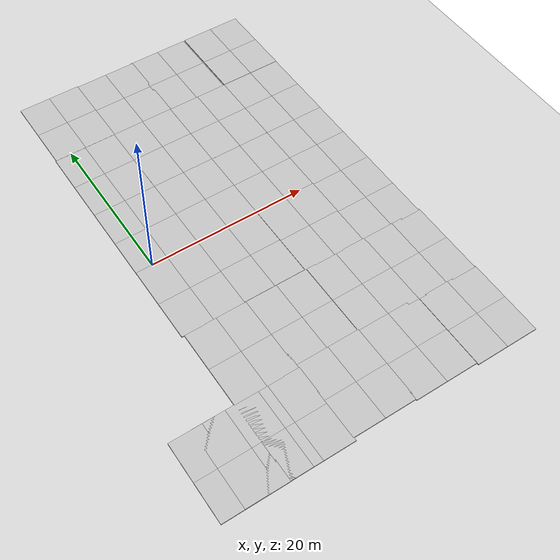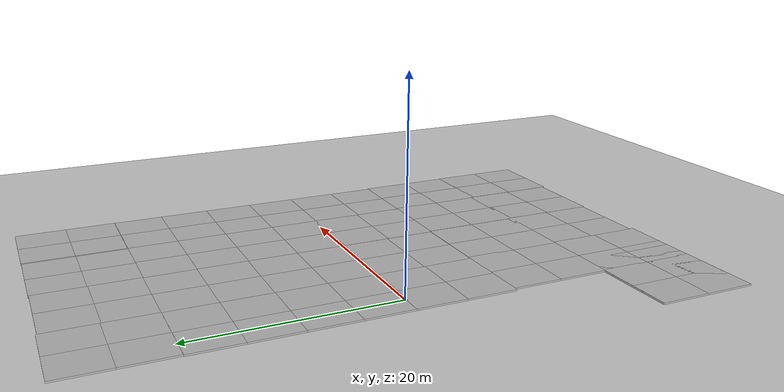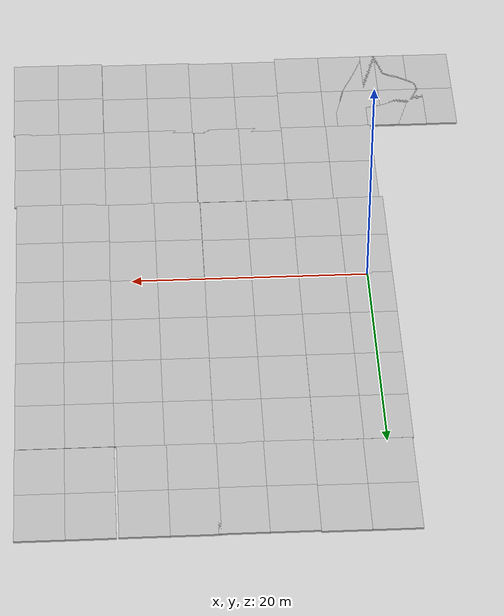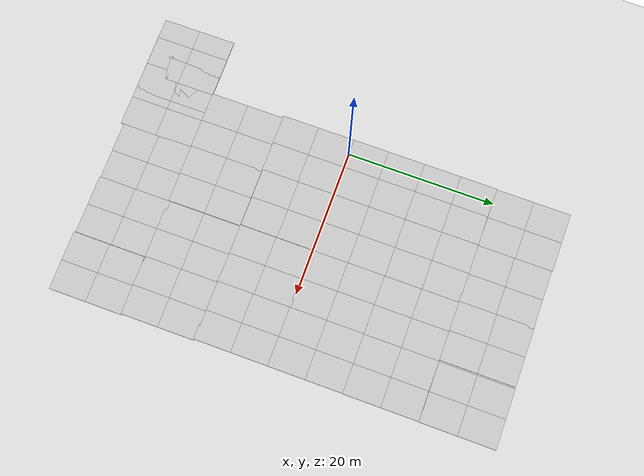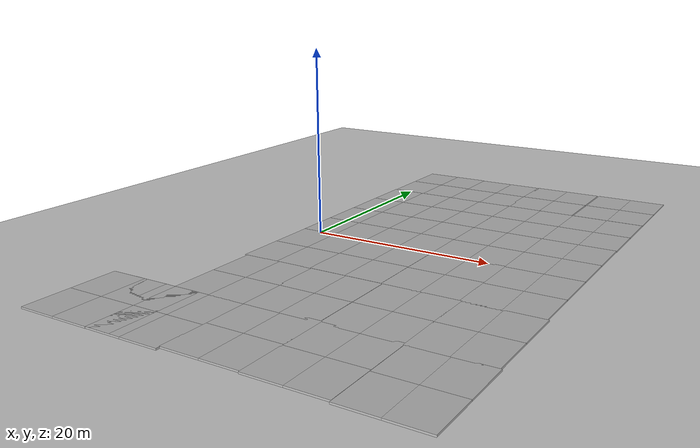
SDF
<sdf version="1.6">
 <world name="default">
  <model name="ground_plane">
   <static>1</static>
   <link name="link">
    <collision name="collision">
     <geometry><plane><normal>0 0 1</normal><size>100 100</size></plane></geometry>
     <surface><friction><ode><mu>100</mu><mu2>50</mu2></ode></friction></surface>
    </collision>
    <visual name="visual">
     <cast_shadows>0</cast_shadows>
     <geometry><plane><normal>0 0 1</normal><size>100 100</size></plane></geometry>
     <material>
      <script><uri>file://media/materials/scripts/gazebo.material</uri><name>Gazebo/Grey</name></script>
     </material>
    </visual>
   </link>
  </model>
  <model name="mud_box">
   <static>1</static>
   <link name="link">
    <collision name="collision"><geometry><box><size>8 10 0.2</size></box></geometry></collision>
    <visual name="visual_1">
     <pose>-2 2.5 0 0 -0 0</pose>
     <cast_shadows>0</cast_shadows>
     <geometry><box><size>4 5 0.2</size></box></geometry>
     <material>
      <script>
       <uri>model://mud_box/materials/scripts</uri>
       <uri>model://mud_box/materials/textures</uri>
       <name>vrc/mud</name>
      </script>
     </material>
    </visual>
    <visual name="visual_2">
     <pose>2 2.5 0 0 -0 0</pose>
     <cast_shadows>0</cast_shadows>
     <geometry><box><size>4 5 0.2</size></box></geometry>
     <material>
      <script>
       <uri>model://mud_box/materials/scripts</uri>
       <uri>model://mud_box/materials/textures</uri>
       <name>vrc/mud</name>
      </script>
     </material>
    </visual>
    <visual name="visual_3">
     <pose>2 -2.5 0 0 -0 0</pose>
     <cast_shadows>0</cast_shadows>
     <geometry><box><size>4 5 0.2</size></box></geometry>
     <material>
      <script>
       <uri>model://mud_box/materials/scripts</uri>
       <uri>model://mud_box/materials/textures</uri>
       <name>vrc/mud</name>
      </script>
     </material>
    </visual>
    <visual name="visual_4">
     <pose>-2 -2.5 0 0 -0 0</pose>
     <cast_shadows>0</cast_shadows>
     <geometry><box><size>4 5 0.2</size></box></geometry>
     <material>
      <script>
       <uri>model://mud_box/materials/scripts</uri>
       <uri>model://mud_box/materials/textures</uri>
       <name>vrc/mud</name>
      </script>
     </material>
    </visual>
   </link>
   <pose>9.86832 14.8407 0 0 -0 0</pose>
  </model>
  <model name="mud_box_0">
   <static>1</static>
   <link name="link">
    <collision name="collision"><geometry><box><size>8 10 0.2</size></box></geometry></collision>
    <visual name="visual_1">
     <pose>-2 2.5 0 0 -0 0</pose>
     <cast_shadows>0</cast_shadows>
     <geometry><box><size>4 5 0.2</size></box></geometry>
     <material>
      <script>
       <uri>model://mud_box/materials/scripts</uri>
       <uri>model://mud_box/materials/textures</uri>
       <name>vrc/mud</name>
      </script>
     </material>
    </visual>
    <visual name="visual_2">
     <pose>2 2.5 0 0 -0 0</pose>
     <cast_shadows>0</cast_shadows>
     <geometry><box><size>4 5 0.2</size></box></geometry>
     <material>
      <script>
       <uri>model://mud_box/materials/scripts</uri>
       <uri>model://mud_box/materials/textures</uri>
       <name>vrc/mud</name>
      </script>
     </material>
    </visual>
    <visual name="visual_3">
     <pose>2 -2.5 0 0 -0 0</pose>
     <cast_shadows>0</cast_shadows>
     <geometry><box><size>4 5 0.2</size></box></geometry>
     <material>
      <script>
       <uri>model://mud_box/materials/scripts</uri>
       <uri>model://mud_box/materials/textures</uri>
       <name>vrc/mud</name>
      </script>
     </material>
    </visual>
    <visual name="visual_4">
     <pose>-2 -2.5 0 0 -0 0</pose>
     <cast_shadows>0</cast_shadows>
     <geometry><box><size>4 5 0.2</size></box></geometry>
     <material>
      <script>
       <uri>model://mud_box/materials/scripts</uri>
       <uri>model://mud_box/materials/textures</uri>
       <name>vrc/mud</name>
      </script>
     </material>
    </visual>
   </link>
   <pose>1.86767 4.83104 0 0 -0 0</pose>
  </model>
  <model name="mud_box_1">
   <static>1</static>
   <link name="link">
    <collision name="collision"><geometry><box><size>8 10 0.2</size></box></geometry></collision>
    <visual name="visual_1">
     <pose>-2 2.5 0 0 -0 0</pose>
     <cast_shadows>0</cast_shadows>
     <geometry><box><size>4 5 0.2</size></box></geometry>
     <material>
      <script>
       <uri>model://mud_box/materials/scripts</uri>
       <uri>model://mud_box/materials/textures</uri>
       <name>vrc/mud</name>
      </script>
     </material>
    </visual>
    <visual name="visual_2">
     <pose>2 2.5 0 0 -0 0</pose>
     <cast_shadows>0</cast_shadows>
     <geometry><box><size>4 5 0.2</size></box></geometry>
     <material>
      <script>
       <uri>model://mud_box/materials/scripts</uri>
       <uri>model://mud_box/materials/textures</uri>
       <name>vrc/mud</name>
      </script>
     </material>
    </visual>
    <visual name="visual_3">
     <pose>2 -2.5 0 0 -0 0</pose>
     <cast_shadows>0</cast_shadows>
     <geometry><box><size>4 5 0.2</size></box></geometry>
     <material>
      <script>
       <uri>model://mud_box/materials/scripts</uri>
       <uri>model://mud_box/materials/textures</uri>
       <name>vrc/mud</name>
      </script>
     </material>
    </visual>
    <visual name="visual_4">
     <pose>-2 -2.5 0 0 -0 0</pose>
     <cast_shadows>0</cast_shadows>
     <geometry><box><size>4 5 0.2</size></box></geometry>
     <material>
      <script>
       <uri>model://mud_box/materials/scripts</uri>
       <uri>model://mud_box/materials/textures</uri>
       <name>vrc/mud</name>
      </script>
     </material>
    </visual>
   </link>
   <pose>25.8304 -5.18145 0 0 -0 0</pose>
  </model>
  <model name="mud_box_2">
   <static>1</static>
   <link name="link">
    <collision name="collision"><geometry><box><size>8 10 0.2</size></box></geometry></collision>
    <visual name="visual_1">
     <pose>-2 2.5 0 0 -0 0</pose>
     <cast_shadows>0</cast_shadows>
     <geometry><box><size>4 5 0.2</size></box></geometry>
     <material>
      <script>
       <uri>model://mud_box/materials/scripts</uri>
       <uri>model://mud_box/materials/textures</uri>
       <name>vrc/mud</name>
      </script>
     </material>
    </visual>
    <visual name="visual_2">
     <pose>2 2.5 0 0 -0 0</pose>
     <cast_shadows>0</cast_shadows>
     <geometry><box><size>4 5 0.2</size></box></geometry>
     <material>
      <script>
       <uri>model://mud_box/materials/scripts</uri>
       <uri>model://mud_box/materials/textures</uri>
       <name>vrc/mud</name>
      </script>
     </material>
    </visual>
    <visual name="visual_3">
     <pose>2 -2.5 0 0 -0 0</pose>
     <cast_shadows>0</cast_shadows>
     <geometry><box><size>4 5 0.2</size></box></geometry>
     <material>
      <script>
       <uri>model://mud_box/materials/scripts</uri>
       <uri>model://mud_box/materials/textures</uri>
       <name>vrc/mud</name>
      </script>
     </material>
    </visual>
    <visual name="visual_4">
     <pose>-2 -2.5 0 0 -0 0</pose>
     <cast_shadows>0</cast_shadows>
     <geometry><box><size>4 5 0.2</size></box></geometry>
     <material>
      <script>
       <uri>model://mud_box/materials/scripts</uri>
       <uri>model://mud_box/materials/textures</uri>
       <name>vrc/mud</name>
      </script>
     </material>
    </visual>
   </link>
   <pose>1.88136 -5.00996 0 0 -0 0</pose>
  </model>
  <model name="mud_box_0_clone">
   <static>1</static>
   <link name="link">
    <collision name="collision"><geometry><box><size>8 10 0.2</size></box></geometry></collision>
    <visual name="visual_1">
     <pose>-2 2.5 0 0 -0 0</pose>
     <cast_shadows>0</cast_shadows>
     <geometry><box><size>4 5 0.2</size></box></geometry>
     <material>
      <script>
       <uri>model://mud_box/materials/scripts</uri>
       <uri>model://mud_box/materials/textures</uri>
       <name>vrc/mud</name>
      </script>
     </material>
    </visual>
    <visual name="visual_2">
     <pose>2 2.5 0 0 -0 0</pose>
     <cast_shadows>0</cast_shadows>
     <geometry><box><size>4 5 0.2</size></box></geometry>
     <material>
      <script>
       <uri>model://mud_box/materials/scripts</uri>
       <uri>model://mud_box/materials/textures</uri>
       <name>vrc/mud</name>
      </script>
     </material>
    </visual>
    <visual name="visual_3">
     <pose>2 -2.5 0 0 -0 0</pose>
     <cast_shadows>0</cast_shadows>
     <geometry><box><size>4 5 0.2</size></box></geometry>
     <material>
      <script>
       <uri>model://mud_box/materials/scripts</uri>
       <uri>model://mud_box/materials/textures</uri>
       <name>vrc/mud</name>
      </script>
     </material>
    </visual>
    <visual name="visual_4">
     <pose>-2 -2.5 0 0 -0 0</pose>
     <cast_shadows>0</cast_shadows>
     <geometry><box><size>4 5 0.2</size></box></geometry>
     <material>
      <script>
       <uri>model://mud_box/materials/scripts</uri>
       <uri>model://mud_box/materials/textures</uri>
       <name>vrc/mud</name>
      </script>
     </material>
    </visual>
   </link>
   <pose>9.84766 -4.91326 0 0 -0 0</pose>
  </model>
  <model name="mud_box_0_clone_clone">
   <static>1</static>
   <link name="link">
    <collision name="collision"><geometry><box><size>8 10 0.2</size></box></geometry></collision>
    <visual name="visual_1">
     <pose>-2 2.5 0 0 -0 0</pose>
     <cast_shadows>0</cast_shadows>
     <geometry><box><size>4 5 0.2</size></box></geometry>
     <material>
      <script>
       <uri>model://mud_box/materials/scripts</uri>
       <uri>model://mud_box/materials/textures</uri>
       <name>vrc/mud</name>
      </script>
     </material>
    </visual>
    <visual name="visual_2">
     <pose>2 2.5 0 0 -0 0</pose>
     <cast_shadows>0</cast_shadows>
     <geometry><box><size>4 5 0.2</size></box></geometry>
     <material>
      <script>
       <uri>model://mud_box/materials/scripts</uri>
       <uri>model://mud_box/materials/textures</uri>
       <name>vrc/mud</name>
      </script>
     </material>
    </visual>
    <visual name="visual_3">
     <pose>2 -2.5 0 0 -0 0</pose>
     <cast_shadows>0</cast_shadows>
     <geometry><box><size>4 5 0.2</size></box></geometry>
     <material>
      <script>
       <uri>model://mud_box/materials/scripts</uri>
       <uri>model://mud_box/materials/textures</uri>
       <name>vrc/mud</name>
      </script>
     </material>
    </visual>
    <visual name="visual_4">
     <pose>-2 -2.5 0 0 -0 0</pose>
     <cast_shadows>0</cast_shadows>
     <geometry><box><size>4 5 0.2</size></box></geometry>
     <material>
      <script>
       <uri>model://mud_box/materials/scripts</uri>
       <uri>model://mud_box/materials/textures</uri>
       <name>vrc/mud</name>
      </script>
     </material>
    </visual>
   </link>
   <pose>17.874 -5.03497 0 0 -0 0</pose>
  </model>
  <model name="mud_box_0_clone_clone_0">
   <static>1</static>
   <link name="link">
    <collision name="collision"><geometry><box><size>8 10 0.2</size></box></geometry></collision>
    <visual name="visual_1">
     <pose>-2 2.5 0 0 -0 0</pose>
     <cast_shadows>0</cast_shadows>
     <geometry><box><size>4 5 0.2</size></box></geometry>
     <material>
      <script>
       <uri>model://mud_box/materials/scripts</uri>
       <uri>model://mud_box/materials/textures</uri>
       <name>vrc/mud</name>
      </script>
     </material>
    </visual>
    <visual name="visual_2">
     <pose>2 2.5 0 0 -0 0</pose>
     <cast_shadows>0</cast_shadows>
     <geometry><box><size>4 5 0.2</size></box></geometry>
     <material>
      <script>
       <uri>model://mud_box/materials/scripts</uri>
       <uri>model://mud_box/materials/textures</uri>
       <name>vrc/mud</name>
      </script>
     </material>
    </visual>
    <visual name="visual_3">
     <pose>2 -2.5 0 0 -0 0</pose>
     <cast_shadows>0</cast_shadows>
     <geometry><box><size>4 5 0.2</size></box></geometry>
     <material>
      <script>
       <uri>model://mud_box/materials/scripts</uri>
       <uri>model://mud_box/materials/textures</uri>
       <name>vrc/mud</name>
      </script>
     </material>
    </visual>
    <visual name="visual_4">
     <pose>-2 -2.5 0 0 -0 0</pose>
     <cast_shadows>0</cast_shadows>
     <geometry><box><size>4 5 0.2</size></box></geometry>
     <material>
      <script>
       <uri>model://mud_box/materials/scripts</uri>
       <uri>model://mud_box/materials/textures</uri>
       <name>vrc/mud</name>
      </script>
     </material>
    </visual>
   </link>
   <pose>17.8432 4.79546 0 0 -0 0</pose>
  </model>
  <model name="mud_box_0_clone_clone_1">
   <static>1</static>
   <link name="link">
    <collision name="collision"><geometry><box><size>8 10 0.2</size></box></geometry></collision>
    <visual name="visual_1">
     <pose>-2 2.5 0 0 -0 0</pose>
     <cast_shadows>0</cast_shadows>
     <geometry><box><size>4 5 0.2</size></box></geometry>
     <material>
      <script>
       <uri>model://mud_box/materials/scripts</uri>
       <uri>model://mud_box/materials/textures</uri>
       <name>vrc/mud</name>
      </script>
     </material>
    </visual>
    <visual name="visual_2">
     <pose>2 2.5 0 0 -0 0</pose>
     <cast_shadows>0</cast_shadows>
     <geometry><box><size>4 5 0.2</size></box></geometry>
     <material>
      <script>
       <uri>model://mud_box/materials/scripts</uri>
       <uri>model://mud_box/materials/textures</uri>
       <name>vrc/mud</name>
      </script>
     </material>
    </visual>
    <visual name="visual_3">
     <pose>2 -2.5 0 0 -0 0</pose>
     <cast_shadows>0</cast_shadows>
     <geometry><box><size>4 5 0.2</size></box></geometry>
     <material>
      <script>
       <uri>model://mud_box/materials/scripts</uri>
       <uri>model://mud_box/materials/textures</uri>
       <name>vrc/mud</name>
      </script>
     </material>
    </visual>
    <visual name="visual_4">
     <pose>-2 -2.5 0 0 -0 0</pose>
     <cast_shadows>0</cast_shadows>
     <geometry><box><size>4 5 0.2</size></box></geometry>
     <material>
      <script>
       <uri>model://mud_box/materials/scripts</uri>
       <uri>model://mud_box/materials/textures</uri>
       <name>vrc/mud</name>
      </script>
     </material>
    </visual>
   </link>
   <pose>25.8322 4.79818 0 0 -0 0</pose>
  </model>
  <model name="mud_box_0_clone_clone_2">
   <static>1</static>
   <link name="link">
    <collision name="collision"><geometry><box><size>8 10 0.2</size></box></geometry></collision>
    <visual name="visual_1">
     <pose>-2 2.5 0 0 -0 0</pose>
     <cast_shadows>0</cast_shadows>
     <geometry><box><size>4 5 0.2</size></box></geometry>
     <material>
      <script>
       <uri>model://mud_box/materials/scripts</uri>
       <uri>model://mud_box/materials/textures</uri>
       <name>vrc/mud</name>
      </script>
     </material>
    </visual>
    <visual name="visual_2">
     <pose>2 2.5 0 0 -0 0</pose>
     <cast_shadows>0</cast_shadows>
     <geometry><box><size>4 5 0.2</size></box></geometry>
     <material>
      <script>
       <uri>model://mud_box/materials/scripts</uri>
       <uri>model://mud_box/materials/textures</uri>
       <name>vrc/mud</name>
      </script>
     </material>
    </visual>
    <visual name="visual_3">
     <pose>2 -2.5 0 0 -0 0</pose>
     <cast_shadows>0</cast_shadows>
     <geometry><box><size>4 5 0.2</size></box></geometry>
     <material>
      <script>
       <uri>model://mud_box/materials/scripts</uri>
       <uri>model://mud_box/materials/textures</uri>
       <name>vrc/mud</name>
      </script>
     </material>
    </visual>
    <visual name="visual_4">
     <pose>-2 -2.5 0 0 -0 0</pose>
     <cast_shadows>0</cast_shadows>
     <geometry><box><size>4 5 0.2</size></box></geometry>
     <material>
      <script>
       <uri>model://mud_box/materials/scripts</uri>
       <uri>model://mud_box/materials/textures</uri>
       <name>vrc/mud</name>
      </script>
     </material>
    </visual>
   </link>
   <pose>1.86503 14.8262 0 0 -0 0</pose>
  </model>
  <model name="mud_box_4">
   <static>1</static>
   <link name="link">
    <collision name="collision"><geometry><box><size>8 10 0.2</size></box></geometry></collision>
    <visual name="visual_1">
     <pose>-2 2.5 0 0 -0 0</pose>
     <cast_shadows>0</cast_shadows>
     <geometry><box><size>4 5 0.2</size></box></geometry>
     <material>
      <script>
       <uri>model://mud_box/materials/scripts</uri>
       <uri>model://mud_box/materials/textures</uri>
       <name>vrc/mud</name>
      </script>
     </material>
    </visual>
    <visual name="visual_2">
     <pose>2 2.5 0 0 -0 0</pose>
     <cast_shadows>0</cast_shadows>
     <geometry><box><size>4 5 0.2</size></box></geometry>
     <material>
      <script>
       <uri>model://mud_box/materials/scripts</uri>
       <uri>model://mud_box/materials/textures</uri>
       <name>vrc/mud</name>
      </script>
     </material>
    </visual>
    <visual name="visual_3">
     <pose>2 -2.5 0 0 -0 0</pose>
     <cast_shadows>0</cast_shadows>
     <geometry><box><size>4 5 0.2</size></box></geometry>
     <material>
      <script>
       <uri>model://mud_box/materials/scripts</uri>
       <uri>model://mud_box/materials/textures</uri>
       <name>vrc/mud</name>
      </script>
     </material>
    </visual>
    <visual name="visual_4">
     <pose>-2 -2.5 0 0 -0 0</pose>
     <cast_shadows>0</cast_shadows>
     <geometry><box><size>4 5 0.2</size></box></geometry>
     <material>
      <script>
       <uri>model://mud_box/materials/scripts</uri>
       <uri>model://mud_box/materials/textures</uri>
       <name>vrc/mud</name>
      </script>
     </material>
    </visual>
   </link>
   <pose>9.86465 4.85433 0 0 -0 0</pose>
  </model>
  <model name="mud_box_3">
   <static>1</static>
   <link name="link">
    <collision name="collision"><geometry><box><size>8 10 0.2</size></box></geometry></collision>
    <visual name="visual_1">
     <pose>-2 2.5 0 0 -0 0</pose>
     <cast_shadows>0</cast_shadows>
     <geometry><box><size>4 5 0.2</size></box></geometry>
     <material>
      <script>
       <uri>model://mud_box/materials/scripts</uri>
       <uri>model://mud_box/materials/textures</uri>
       <name>vrc/mud</name>
      </script>
     </material>
    </visual>
    <visual name="visual_2">
     <pose>2 2.5 0 0 -0 0</pose>
     <cast_shadows>0</cast_shadows>
     <geometry><box><size>4 5 0.2</size></box></geometry>
     <material>
      <script>
       <uri>model://mud_box/materials/scripts</uri>
       <uri>model://mud_box/materials/textures</uri>
       <name>vrc/mud</name>
      </script>
     </material>
    </visual>
    <visual name="visual_3">
     <pose>2 -2.5 0 0 -0 0</pose>
     <cast_shadows>0</cast_shadows>
     <geometry><box><size>4 5 0.2</size></box></geometry>
     <material>
      <script>
       <uri>model://mud_box/materials/scripts</uri>
       <uri>model://mud_box/materials/textures</uri>
       <name>vrc/mud</name>
      </script>
     </material>
    </visual>
    <visual name="visual_4">
     <pose>-2 -2.5 0 0 -0 0</pose>
     <cast_shadows>0</cast_shadows>
     <geometry><box><size>4 5 0.2</size></box></geometry>
     <material>
      <script>
       <uri>model://mud_box/materials/scripts</uri>
       <uri>model://mud_box/materials/textures</uri>
       <name>vrc/mud</name>
      </script>
     </material>
    </visual>
   </link>
   <pose>17.8698 14.7961 0 0 -0 0</pose>
  </model>
  <model name="mud_box_5">
   <static>1</static>
   <link name="link">
    <collision name="collision"><geometry><box><size>8 10 0.2</size></box></geometry></collision>
    <visual name="visual_1">
     <pose>-2 2.5 0 0 -0 0</pose>
     <cast_shadows>0</cast_shadows>
     <geometry><box><size>4 5 0.2</size></box></geometry>
     <material>
      <script>
       <uri>model://mud_box/materials/scripts</uri>
       <uri>model://mud_box/materials/textures</uri>
       <name>vrc/mud</name>
      </script>
     </material>
    </visual>
    <visual name="visual_2">
     <pose>2 2.5 0 0 -0 0</pose>
     <cast_shadows>0</cast_shadows>
     <geometry><box><size>4 5 0.2</size></box></geometry>
     <material>
      <script>
       <uri>model://mud_box/materials/scripts</uri>
       <uri>model://mud_box/materials/textures</uri>
       <name>vrc/mud</name>
      </script>
     </material>
    </visual>
    <visual name="visual_3">
     <pose>2 -2.5 0 0 -0 0</pose>
     <cast_shadows>0</cast_shadows>
     <geometry><box><size>4 5 0.2</size></box></geometry>
     <material>
      <script>
       <uri>model://mud_box/materials/scripts</uri>
       <uri>model://mud_box/materials/textures</uri>
       <name>vrc/mud</name>
      </script>
     </material>
    </visual>
    <visual name="visual_4">
     <pose>-2 -2.5 0 0 -0 0</pose>
     <cast_shadows>0</cast_shadows>
     <geometry><box><size>4 5 0.2</size></box></geometry>
     <material>
      <script>
       <uri>model://mud_box/materials/scripts</uri>
       <uri>model://mud_box/materials/textures</uri>
       <name>vrc/mud</name>
      </script>
     </material>
    </visual>
   </link>
   <pose>25.863 14.7854 0 0 -0 0</pose>
  </model>
  <model name="mud_box_2_clone_3">
   <static>1</static>
   <link name="link">
    <collision name="collision"><geometry><box><size>8 10 0.2</size></box></geometry></collision>
    <visual name="visual_1">
     <pose>-2 2.5 0 0 -0 0</pose>
     <cast_shadows>0</cast_shadows>
     <geometry><box><size>4 5 0.2</size></box></geometry>
     <material>
      <script>
       <uri>model://mud_box/materials/scripts</uri>
       <uri>model://mud_box/materials/textures</uri>
       <name>vrc/mud</name>
      </script>
     </material>
    </visual>
    <visual name="visual_2">
     <pose>2 2.5 0 0 -0 0</pose>
     <cast_shadows>0</cast_shadows>
     <geometry><box><size>4 5 0.2</size></box></geometry>
     <material>
      <script>
       <uri>model://mud_box/materials/scripts</uri>
       <uri>model://mud_box/materials/textures</uri>
       <name>vrc/mud</name>
      </script>
     </material>
    </visual>
    <visual name="visual_3">
     <pose>2 -2.5 0 0 -0 0</pose>
     <cast_shadows>0</cast_shadows>
     <geometry><box><size>4 5 0.2</size></box></geometry>
     <material>
      <script>
       <uri>model://mud_box/materials/scripts</uri>
       <uri>model://mud_box/materials/textures</uri>
       <name>vrc/mud</name>
      </script>
     </material>
    </visual>
    <visual name="visual_4">
     <pose>-2 -2.5 0 0 -0 0</pose>
     <cast_shadows>0</cast_shadows>
     <geometry><box><size>4 5 0.2</size></box></geometry>
     <material>
      <script>
       <uri>model://mud_box/materials/scripts</uri>
       <uri>model://mud_box/materials/textures</uri>
       <name>vrc/mud</name>
      </script>
     </material>
    </visual>
   </link>
   <pose>1.9474 24.8331 0 0 -0 0</pose>
  </model>
  <model name="mud_box_2_clone_4">
   <static>1</static>
   <link name="link">
    <collision name="collision"><geometry><box><size>8 10 0.2</size></box></geometry></collision>
    <visual name="visual_1">
     <pose>-2 2.5 0 0 -0 0</pose>
     <cast_shadows>0</cast_shadows>
     <geometry><box><size>4 5 0.2</size></box></geometry>
     <material>
      <script>
       <uri>model://mud_box/materials/scripts</uri>
       <uri>model://mud_box/materials/textures</uri>
       <name>vrc/mud</name>
      </script>
     </material>
    </visual>
    <visual name="visual_2">
     <pose>2 2.5 0 0 -0 0</pose>
     <cast_shadows>0</cast_shadows>
     <geometry><box><size>4 5 0.2</size></box></geometry>
     <material>
      <script>
       <uri>model://mud_box/materials/scripts</uri>
       <uri>model://mud_box/materials/textures</uri>
       <name>vrc/mud</name>
      </script>
     </material>
    </visual>
    <visual name="visual_3">
     <pose>2 -2.5 0 0 -0 0</pose>
     <cast_shadows>0</cast_shadows>
     <geometry><box><size>4 5 0.2</size></box></geometry>
     <material>
      <script>
       <uri>model://mud_box/materials/scripts</uri>
       <uri>model://mud_box/materials/textures</uri>
       <name>vrc/mud</name>
      </script>
     </material>
    </visual>
    <visual name="visual_4">
     <pose>-2 -2.5 0 0 -0 0</pose>
     <cast_shadows>0</cast_shadows>
     <geometry><box><size>4 5 0.2</size></box></geometry>
     <material>
      <script>
       <uri>model://mud_box/materials/scripts</uri>
       <uri>model://mud_box/materials/textures</uri>
       <name>vrc/mud</name>
      </script>
     </material>
    </visual>
   </link>
   <pose>9.9456 24.7245 0 0 -0 0</pose>
  </model>
  <model name="mud_box_2_clone_5">
   <static>1</static>
   <link name="link">
    <collision name="collision"><geometry><box><size>8 10 0.2</size></box></geometry></collision>
    <visual name="visual_1">
     <pose>-2 2.5 0 0 -0 0</pose>
     <cast_shadows>0</cast_shadows>
     <geometry><box><size>4 5 0.2</size></box></geometry>
     <material>
      <script>
       <uri>model://mud_box/materials/scripts</uri>
       <uri>model://mud_box/materials/textures</uri>
       <name>vrc/mud</name>
      </script>
     </material>
    </visual>
    <visual name="visual_2">
     <pose>2 2.5 0 0 -0 0</pose>
     <cast_shadows>0</cast_shadows>
     <geometry><box><size>4 5 0.2</size></box></geometry>
     <material>
      <script>
       <uri>model://mud_box/materials/scripts</uri>
       <uri>model://mud_box/materials/textures</uri>
       <name>vrc/mud</name>
      </script>
     </material>
    </visual>
    <visual name="visual_3">
     <pose>2 -2.5 0 0 -0 0</pose>
     <cast_shadows>0</cast_shadows>
     <geometry><box><size>4 5 0.2</size></box></geometry>
     <material>
      <script>
       <uri>model://mud_box/materials/scripts</uri>
       <uri>model://mud_box/materials/textures</uri>
       <name>vrc/mud</name>
      </script>
     </material>
    </visual>
    <visual name="visual_4">
     <pose>-2 -2.5 0 0 -0 0</pose>
     <cast_shadows>0</cast_shadows>
     <geometry><box><size>4 5 0.2</size></box></geometry>
     <material>
      <script>
       <uri>model://mud_box/materials/scripts</uri>
       <uri>model://mud_box/materials/textures</uri>
       <name>vrc/mud</name>
      </script>
     </material>
    </visual>
   </link>
   <pose>17.7255 24.7838 0 0 -0 0</pose>
  </model>
  <model name="mud_box_2_clone_6">
   <static>1</static>
   <link name="link">
    <collision name="collision"><geometry><box><size>8 10 0.2</size></box></geometry></collision>
    <visual name="visual_1">
     <pose>-2 2.5 0 0 -0 0</pose>
     <cast_shadows>0</cast_shadows>
     <geometry><box><size>4 5 0.2</size></box></geometry>
     <material>
      <script>
       <uri>model://mud_box/materials/scripts</uri>
       <uri>model://mud_box/materials/textures</uri>
       <name>vrc/mud</name>
      </script>
     </material>
    </visual>
    <visual name="visual_2">
     <pose>2 2.5 0 0 -0 0</pose>
     <cast_shadows>0</cast_shadows>
     <geometry><box><size>4 5 0.2</size></box></geometry>
     <material>
      <script>
       <uri>model://mud_box/materials/scripts</uri>
       <uri>model://mud_box/materials/textures</uri>
       <name>vrc/mud</name>
      </script>
     </material>
    </visual>
    <visual name="visual_3">
     <pose>2 -2.5 0 0 -0 0</pose>
     <cast_shadows>0</cast_shadows>
     <geometry><box><size>4 5 0.2</size></box></geometry>
     <material>
      <script>
       <uri>model://mud_box/materials/scripts</uri>
       <uri>model://mud_box/materials/textures</uri>
       <name>vrc/mud</name>
      </script>
     </material>
    </visual>
    <visual name="visual_4">
     <pose>-2 -2.5 0 0 -0 0</pose>
     <cast_shadows>0</cast_shadows>
     <geometry><box><size>4 5 0.2</size></box></geometry>
     <material>
      <script>
       <uri>model://mud_box/materials/scripts</uri>
       <uri>model://mud_box/materials/textures</uri>
       <name>vrc/mud</name>
      </script>
     </material>
    </visual>
   </link>
   <pose>25.9029 24.817 0 0 -0 0</pose>
  </model>
  <model name="mud_box_2_clone_8">
   <static>1</static>
   <link name="link">
    <collision name="collision"><geometry><box><size>8 10 0.2</size></box></geometry></collision>
    <visual name="visual_1">
     <pose>-2 2.5 0 0 -0 0</pose>
     <cast_shadows>0</cast_shadows>
     <geometry><box><size>4 5 0.2</size></box></geometry>
     <material>
      <script>
       <uri>model://mud_box/materials/scripts</uri>
       <uri>model://mud_box/materials/textures</uri>
       <name>vrc/mud</name>
      </script>
     </material>
    </visual>
    <visual name="visual_2">
     <pose>2 2.5 0 0 -0 0</pose>
     <cast_shadows>0</cast_shadows>
     <geometry><box><size>4 5 0.2</size></box></geometry>
     <material>
      <script>
       <uri>model://mud_box/materials/scripts</uri>
       <uri>model://mud_box/materials/textures</uri>
       <name>vrc/mud</name>
      </script>
     </material>
    </visual>
    <visual name="visual_3">
     <pose>2 -2.5 0 0 -0 0</pose>
     <cast_shadows>0</cast_shadows>
     <geometry><box><size>4 5 0.2</size></box></geometry>
     <material>
      <script>
       <uri>model://mud_box/materials/scripts</uri>
       <uri>model://mud_box/materials/textures</uri>
       <name>vrc/mud</name>
      </script>
     </material>
    </visual>
    <visual name="visual_4">
     <pose>-2 -2.5 0 0 -0 0</pose>
     <cast_shadows>0</cast_shadows>
     <geometry><box><size>4 5 0.2</size></box></geometry>
     <material>
      <script>
       <uri>model://mud_box/materials/scripts</uri>
       <uri>model://mud_box/materials/textures</uri>
       <name>vrc/mud</name>
      </script>
     </material>
    </visual>
   </link>
   <pose>2.1899 -14.9558 0 0 -0 0</pose>
  </model>
  <model name="mud_box_2_clone_9">
   <static>1</static>
   <link name="link">
    <collision name="collision"><geometry><box><size>8 10 0.2</size></box></geometry></collision>
    <visual name="visual_1">
     <pose>-2 2.5 0 0 -0 0</pose>
     <cast_shadows>0</cast_shadows>
     <geometry><box><size>4 5 0.2</size></box></geometry>
     <material>
      <script>
       <uri>model://mud_box/materials/scripts</uri>
       <uri>model://mud_box/materials/textures</uri>
       <name>vrc/mud</name>
      </script>
     </material>
    </visual>
    <visual name="visual_2">
     <pose>2 2.5 0 0 -0 0</pose>
     <cast_shadows>0</cast_shadows>
     <geometry><box><size>4 5 0.2</size></box></geometry>
     <material>
      <script>
       <uri>model://mud_box/materials/scripts</uri>
       <uri>model://mud_box/materials/textures</uri>
       <name>vrc/mud</name>
      </script>
     </material>
    </visual>
    <visual name="visual_3">
     <pose>2 -2.5 0 0 -0 0</pose>
     <cast_shadows>0</cast_shadows>
     <geometry><box><size>4 5 0.2</size></box></geometry>
     <material>
      <script>
       <uri>model://mud_box/materials/scripts</uri>
       <uri>model://mud_box/materials/textures</uri>
       <name>vrc/mud</name>
      </script>
     </material>
    </visual>
    <visual name="visual_4">
     <pose>-2 -2.5 0 0 -0 0</pose>
     <cast_shadows>0</cast_shadows>
     <geometry><box><size>4 5 0.2</size></box></geometry>
     <material>
      <script>
       <uri>model://mud_box/materials/scripts</uri>
       <uri>model://mud_box/materials/textures</uri>
       <name>vrc/mud</name>
      </script>
     </material>
    </visual>
   </link>
   <pose>10.0209 -14.9415 0 0 -0 0</pose>
  </model>
  <model name="mud_box_2_clone_10">
   <static>1</static>
   <link name="link">
    <collision name="collision"><geometry><box><size>8 10 0.2</size></box></geometry></collision>
    <visual name="visual_1">
     <pose>-2 2.5 0 0 -0 0</pose>
     <cast_shadows>0</cast_shadows>
     <geometry><box><size>4 5 0.2</size></box></geometry>
     <material>
      <script>
       <uri>model://mud_box/materials/scripts</uri>
       <uri>model://mud_box/materials/textures</uri>
       <name>vrc/mud</name>
      </script>
     </material>
    </visual>
    <visual name="visual_2">
     <pose>2 2.5 0 0 -0 0</pose>
     <cast_shadows>0</cast_shadows>
     <geometry><box><size>4 5 0.2</size></box></geometry>
     <material>
      <script>
       <uri>model://mud_box/materials/scripts</uri>
       <uri>model://mud_box/materials/textures</uri>
       <name>vrc/mud</name>
      </script>
     </material>
    </visual>
    <visual name="visual_3">
     <pose>2 -2.5 0 0 -0 0</pose>
     <cast_shadows>0</cast_shadows>
     <geometry><box><size>4 5 0.2</size></box></geometry>
     <material>
      <script>
       <uri>model://mud_box/materials/scripts</uri>
       <uri>model://mud_box/materials/textures</uri>
       <name>vrc/mud</name>
      </script>
     </material>
    </visual>
    <visual name="visual_4">
     <pose>-2 -2.5 0 0 -0 0</pose>
     <cast_shadows>0</cast_shadows>
     <geometry><box><size>4 5 0.2</size></box></geometry>
     <material>
      <script>
       <uri>model://mud_box/materials/scripts</uri>
       <uri>model://mud_box/materials/textures</uri>
       <name>vrc/mud</name>
      </script>
     </material>
    </visual>
   </link>
   <pose>18.0604 -14.9551 0 0 -0 0</pose>
  </model>
  <model name="mud_box_2_clone_11">
   <static>1</static>
   <link name="link">
    <collision name="collision"><geometry><box><size>8 10 0.2</size></box></geometry></collision>
    <visual name="visual_1">
     <pose>-2 2.5 0 0 -0 0</pose>
     <cast_shadows>0</cast_shadows>
     <geometry><box><size>4 5 0.2</size></box></geometry>
     <material>
      <script>
       <uri>model://mud_box/materials/scripts</uri>
       <uri>model://mud_box/materials/textures</uri>
       <name>vrc/mud</name>
      </script>
     </material>
    </visual>
    <visual name="visual_2">
     <pose>2 2.5 0 0 -0 0</pose>
     <cast_shadows>0</cast_shadows>
     <geometry><box><size>4 5 0.2</size></box></geometry>
     <material>
      <script>
       <uri>model://mud_box/materials/scripts</uri>
       <uri>model://mud_box/materials/textures</uri>
       <name>vrc/mud</name>
      </script>
     </material>
    </visual>
    <visual name="visual_3">
     <pose>2 -2.5 0 0 -0 0</pose>
     <cast_shadows>0</cast_shadows>
     <geometry><box><size>4 5 0.2</size></box></geometry>
     <material>
      <script>
       <uri>model://mud_box/materials/scripts</uri>
       <uri>model://mud_box/materials/textures</uri>
       <name>vrc/mud</name>
      </script>
     </material>
    </visual>
    <visual name="visual_4">
     <pose>-2 -2.5 0 0 -0 0</pose>
     <cast_shadows>0</cast_shadows>
     <geometry><box><size>4 5 0.2</size></box></geometry>
     <material>
      <script>
       <uri>model://mud_box/materials/scripts</uri>
       <uri>model://mud_box/materials/textures</uri>
       <name>vrc/mud</name>
      </script>
     </material>
    </visual>
   </link>
   <pose>25.9867 -15.006 0 0 -0 0</pose>
  </model>
  <model name="mud_box_2_clone_14_clone_4">
   <static>1</static>
   <link name="link">
    <collision name="collision"><geometry><box><size>8 10 0.2</size></box></geometry></collision>
    <visual name="visual_1">
     <pose>-2 2.5 0 0 -0 0</pose>
     <cast_shadows>0</cast_shadows>
     <geometry><box><size>4 5 0.2</size></box></geometry>
     <material>
      <script>
       <uri>model://mud_box/materials/scripts</uri>
       <uri>model://mud_box/materials/textures</uri>
       <name>vrc/mud</name>
      </script>
     </material>
    </visual>
    <visual name="visual_2">
     <pose>2 2.5 0 0 -0 0</pose>
     <cast_shadows>0</cast_shadows>
     <geometry><box><size>4 5 0.2</size></box></geometry>
     <material>
      <script>
       <uri>model://mud_box/materials/scripts</uri>
       <uri>model://mud_box/materials/textures</uri>
       <name>vrc/mud</name>
      </script>
     </material>
    </visual>
    <visual name="visual_3">
     <pose>2 -2.5 0 0 -0 0</pose>
     <cast_shadows>0</cast_shadows>
     <geometry><box><size>4 5 0.2</size></box></geometry>
     <material>
      <script>
       <uri>model://mud_box/materials/scripts</uri>
       <uri>model://mud_box/materials/textures</uri>
       <name>vrc/mud</name>
      </script>
     </material>
    </visual>
    <visual name="visual_4">
     <pose>-2 -2.5 0 0 -0 0</pose>
     <cast_shadows>0</cast_shadows>
     <geometry><box><size>4 5 0.2</size></box></geometry>
     <material>
      <script>
       <uri>model://mud_box/materials/scripts</uri>
       <uri>model://mud_box/materials/textures</uri>
       <name>vrc/mud</name>
      </script>
     </material>
    </visual>
   </link>
   <pose>26.1087 -24.859 0 0 -0 0</pose>
  </model>
  <model name="mud_box_2_clone_14_clone_5">
   <static>1</static>
   <link name="link">
    <collision name="collision"><geometry><box><size>8 10 0.2</size></box></geometry></collision>
    <visual name="visual_1">
     <pose>-2 2.5 0 0 -0 0</pose>
     <cast_shadows>0</cast_shadows>
     <geometry><box><size>4 5 0.2</size></box></geometry>
     <material>
      <script>
       <uri>model://mud_box/materials/scripts</uri>
       <uri>model://mud_box/materials/textures</uri>
       <name>vrc/mud</name>
      </script>
     </material>
    </visual>
    <visual name="visual_2">
     <pose>2 2.5 0 0 -0 0</pose>
     <cast_shadows>0</cast_shadows>
     <geometry><box><size>4 5 0.2</size></box></geometry>
     <material>
      <script>
       <uri>model://mud_box/materials/scripts</uri>
       <uri>model://mud_box/materials/textures</uri>
       <name>vrc/mud</name>
      </script>
     </material>
    </visual>
    <visual name="visual_3">
     <pose>2 -2.5 0 0 -0 0</pose>
     <cast_shadows>0</cast_shadows>
     <geometry><box><size>4 5 0.2</size></box></geometry>
     <material>
      <script>
       <uri>model://mud_box/materials/scripts</uri>
       <uri>model://mud_box/materials/textures</uri>
       <name>vrc/mud</name>
      </script>
     </material>
    </visual>
    <visual name="visual_4">
     <pose>-2 -2.5 0 0 -0 0</pose>
     <cast_shadows>0</cast_shadows>
     <geometry><box><size>4 5 0.2</size></box></geometry>
     <material>
      <script>
       <uri>model://mud_box/materials/scripts</uri>
       <uri>model://mud_box/materials/textures</uri>
       <name>vrc/mud</name>
      </script>
     </material>
    </visual>
   </link>
   <pose>18.0751 -24.6366 0 0 -0 0</pose>
  </model>
  <model name="mud_box_2_clone_14_clone_6">
   <static>1</static>
   <link name="link">
    <collision name="collision"><geometry><box><size>8 10 0.2</size></box></geometry></collision>
    <visual name="visual_1">
     <pose>-2 2.5 0 0 -0 0</pose>
     <cast_shadows>0</cast_shadows>
     <geometry><box><size>4 5 0.2</size></box></geometry>
     <material>
      <script>
       <uri>model://mud_box/materials/scripts</uri>
       <uri>model://mud_box/materials/textures</uri>
       <name>vrc/mud</name>
      </script>
     </material>
    </visual>
    <visual name="visual_2">
     <pose>2 2.5 0 0 -0 0</pose>
     <cast_shadows>0</cast_shadows>
     <geometry><box><size>4 5 0.2</size></box></geometry>
     <material>
      <script>
       <uri>model://mud_box/materials/scripts</uri>
       <uri>model://mud_box/materials/textures</uri>
       <name>vrc/mud</name>
      </script>
     </material>
    </visual>
    <visual name="visual_3">
     <pose>2 -2.5 0 0 -0 0</pose>
     <cast_shadows>0</cast_shadows>
     <geometry><box><size>4 5 0.2</size></box></geometry>
     <material>
      <script>
       <uri>model://mud_box/materials/scripts</uri>
       <uri>model://mud_box/materials/textures</uri>
       <name>vrc/mud</name>
      </script>
     </material>
    </visual>
    <visual name="visual_4">
     <pose>-2 -2.5 0 0 -0 0</pose>
     <cast_shadows>0</cast_shadows>
     <geometry><box><size>4 5 0.2</size></box></geometry>
     <material>
      <script>
       <uri>model://mud_box/materials/scripts</uri>
       <uri>model://mud_box/materials/textures</uri>
       <name>vrc/mud</name>
      </script>
     </material>
    </visual>
   </link>
   <pose>10.167 -24.5035 0 0 -0 0</pose>
  </model>
  <model name="mud_box_2_clone_14_clone_7">
   <static>1</static>
   <link name="link">
    <collision name="collision"><geometry><box><size>8 10 0.2</size></box></geometry></collision>
    <visual name="visual_1">
     <pose>-2 2.5 0 0 -0 0</pose>
     <cast_shadows>0</cast_shadows>
     <geometry><box><size>4 5 0.2</size></box></geometry>
     <material>
      <script>
       <uri>model://mud_box/materials/scripts</uri>
       <uri>model://mud_box/materials/textures</uri>
       <name>vrc/mud</name>
      </script>
     </material>
    </visual>
    <visual name="visual_2">
     <pose>2 2.5 0 0 -0 0</pose>
     <cast_shadows>0</cast_shadows>
     <geometry><box><size>4 5 0.2</size></box></geometry>
     <material>
      <script>
       <uri>model://mud_box/materials/scripts</uri>
       <uri>model://mud_box/materials/textures</uri>
       <name>vrc/mud</name>
      </script>
     </material>
    </visual>
    <visual name="visual_3">
     <pose>2 -2.5 0 0 -0 0</pose>
     <cast_shadows>0</cast_shadows>
     <geometry><box><size>4 5 0.2</size></box></geometry>
     <material>
      <script>
       <uri>model://mud_box/materials/scripts</uri>
       <uri>model://mud_box/materials/textures</uri>
       <name>vrc/mud</name>
      </script>
     </material>
    </visual>
    <visual name="visual_4">
     <pose>-2 -2.5 0 0 -0 0</pose>
     <cast_shadows>0</cast_shadows>
     <geometry><box><size>4 5 0.2</size></box></geometry>
     <material>
      <script>
       <uri>model://mud_box/materials/scripts</uri>
       <uri>model://mud_box/materials/textures</uri>
       <name>vrc/mud</name>
      </script>
     </material>
    </visual>
   </link>
   <pose>2.24748 -24.9016 0 0 -0 0</pose>
  </model>
  <model name="mud_box_2_clone_14_clone_8">
   <static>1</static>
   <link name="link">
    <collision name="collision"><geometry><box><size>8 10 0.2</size></box></geometry></collision>
    <visual name="visual_1">
     <pose>-2 2.5 0 0 -0 0</pose>
     <cast_shadows>0</cast_shadows>
     <geometry><box><size>4 5 0.2</size></box></geometry>
     <material>
      <script>
       <uri>model://mud_box/materials/scripts</uri>
       <uri>model://mud_box/materials/textures</uri>
       <name>vrc/mud</name>
      </script>
     </material>
    </visual>
    <visual name="visual_2">
     <pose>2 2.5 0 0 -0 0</pose>
     <cast_shadows>0</cast_shadows>
     <geometry><box><size>4 5 0.2</size></box></geometry>
     <material>
      <script>
       <uri>model://mud_box/materials/scripts</uri>
       <uri>model://mud_box/materials/textures</uri>
       <name>vrc/mud</name>
      </script>
     </material>
    </visual>
    <visual name="visual_3">
     <pose>2 -2.5 0 0 -0 0</pose>
     <cast_shadows>0</cast_shadows>
     <geometry><box><size>4 5 0.2</size></box></geometry>
     <material>
      <script>
       <uri>model://mud_box/materials/scripts</uri>
       <uri>model://mud_box/materials/textures</uri>
       <name>vrc/mud</name>
      </script>
     </material>
    </visual>
    <visual name="visual_4">
     <pose>-2 -2.5 0 0 -0 0</pose>
     <cast_shadows>0</cast_shadows>
     <geometry><box><size>4 5 0.2</size></box></geometry>
     <material>
      <script>
       <uri>model://mud_box/materials/scripts</uri>
       <uri>model://mud_box/materials/textures</uri>
       <name>vrc/mud</name>
      </script>
     </material>
    </visual>
   </link>
   <pose>-5.63582 -24.9187 0 0 -0 0</pose>
  </model>
  <model name="mud_box_2_clone_14_clone_7_clone_6">
   <static>1</static>
   <link name="link">
    <collision name="collision"><geometry><box><size>8 10 0.2</size></box></geometry></collision>
    <visual name="visual_1">
     <pose>-2 2.5 0 0 -0 0</pose>
     <cast_shadows>0</cast_shadows>
     <geometry><box><size>4 5 0.2</size></box></geometry>
     <material>
      <script>
       <uri>model://mud_box/materials/scripts</uri>
       <uri>model://mud_box/materials/textures</uri>
       <name>vrc/mud</name>
      </script>
     </material>
    </visual>
    <visual name="visual_2">
     <pose>2 2.5 0 0 -0 0</pose>
     <cast_shadows>0</cast_shadows>
     <geometry><box><size>4 5 0.2</size></box></geometry>
     <material>
      <script>
       <uri>model://mud_box/materials/scripts</uri>
       <uri>model://mud_box/materials/textures</uri>
       <name>vrc/mud</name>
      </script>
     </material>
    </visual>
    <visual name="visual_3">
     <pose>2 -2.5 0 0 -0 0</pose>
     <cast_shadows>0</cast_shadows>
     <geometry><box><size>4 5 0.2</size></box></geometry>
     <material>
      <script>
       <uri>model://mud_box/materials/scripts</uri>
       <uri>model://mud_box/materials/textures</uri>
       <name>vrc/mud</name>
      </script>
     </material>
    </visual>
    <visual name="visual_4">
     <pose>-2 -2.5 0 0 -0 0</pose>
     <cast_shadows>0</cast_shadows>
     <geometry><box><size>4 5 0.2</size></box></geometry>
     <material>
      <script>
       <uri>model://mud_box/materials/scripts</uri>
       <uri>model://mud_box/materials/textures</uri>
       <name>vrc/mud</name>
      </script>
     </material>
    </visual>
   </link>
   <pose>-2.91233 -24.8963 0 0 -0 0</pose>
  </model>
 </world>
</sdf>
